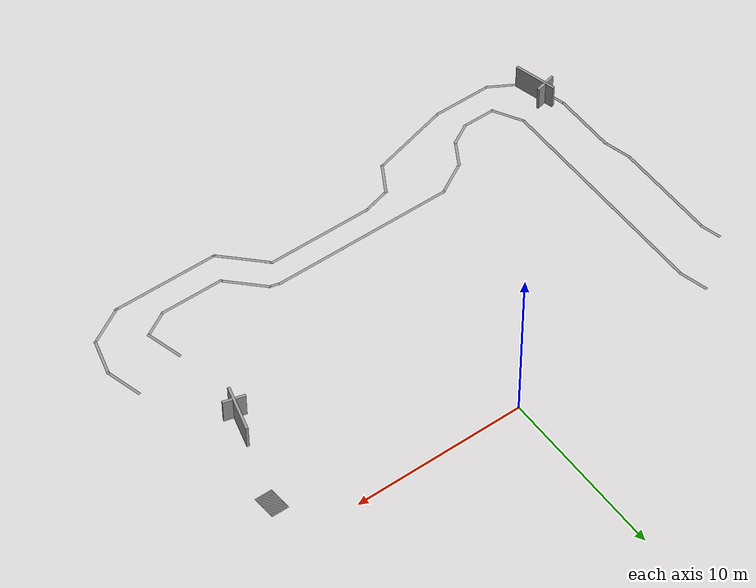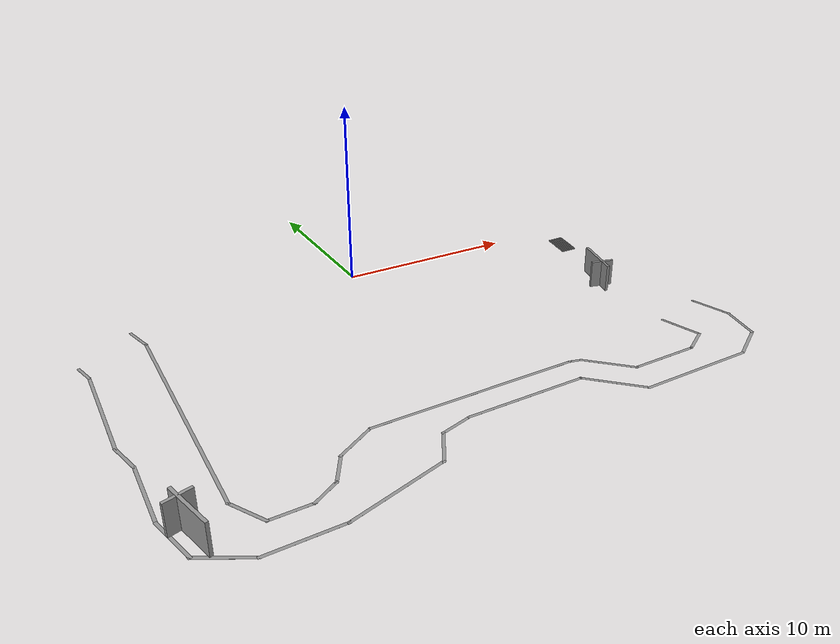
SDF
<sdf version="1.7">
 <model name="Course2023">
  <pose>-0.154528 0.080991 0 0 -0 0</pose>
  <link name="Stairs_11">
   <visual name="Stairs_11_Visual_0">
    <pose>13.5343 -3.32779 0.00375 0 0 -3.14159</pose>
    <geometry><box><size>1 0.05 0.0075</size></box></geometry>
    <material>
     <script><uri>file://media/materials/scripts/gazebo.material</uri><name>Gazebo/Grey</name></script>
     <ambient>1 1 1 1</ambient>
    </material>
    <meta><layer>0</layer></meta>
   </visual>
   <collision name="Stairs_11_Collision_0">
    <geometry><box><size>1 0.05 0.0075</size></box></geometry>
    <pose>13.5343 -3.32779 0.00375 0 0 -3.14159</pose>
   </collision>
   <visual name="Stairs_11_Visual_1">
    <pose>13.5343 -3.27779 0.01125 0 0 -3.14159</pose>
    <geometry><box><size>1 0.05 0.0075</size></box></geometry>
    <material>
     <script><uri>file://media/materials/scripts/gazebo.material</uri><name>Gazebo/Grey</name></script>
     <ambient>1 1 1 1</ambient>
    </material>
    <meta><layer>0</layer></meta>
   </visual>
   <collision name="Stairs_11_Collision_1">
    <geometry><box><size>1 0.05 0.0075</size></box></geometry>
    <pose>13.5343 -3.27779 0.01125 0 0 -3.14159</pose>
   </collision>
   <visual name="Stairs_11_Visual_2">
    <pose>13.5343 -3.22779 0.01875 0 0 -3.14159</pose>
    <geometry><box><size>1 0.05 0.0075</size></box></geometry>
    <material>
     <script><uri>file://media/materials/scripts/gazebo.material</uri><name>Gazebo/Grey</name></script>
     <ambient>1 1 1 1</ambient>
    </material>
    <meta><layer>0</layer></meta>
   </visual>
   <collision name="Stairs_11_Collision_2">
    <geometry><box><size>1 0.05 0.0075</size></box></geometry>
    <pose>13.5343 -3.22779 0.01875 0 0 -3.14159</pose>
   </collision>
   <visual name="Stairs_11_Visual_3">
    <pose>13.5343 -3.17779 0.02625 0 0 -3.14159</pose>
    <geometry><box><size>1 0.05 0.0075</size></box></geometry>
    <material>
     <script><uri>file://media/materials/scripts/gazebo.material</uri><name>Gazebo/Grey</name></script>
     <ambient>1 1 1 1</ambient>
    </material>
    <meta><layer>0</layer></meta>
   </visual>
   <collision name="Stairs_11_Collision_3">
    <geometry><box><size>1 0.05 0.0075</size></box></geometry>
    <pose>13.5343 -3.17779 0.02625 0 0 -3.14159</pose>
   </collision>
   <visual name="Stairs_11_Visual_4">
    <pose>13.5343 -3.12779 0.03375 0 0 -3.14159</pose>
    <geometry><box><size>1 0.05 0.0075</size></box></geometry>
    <material>
     <script><uri>file://media/materials/scripts/gazebo.material</uri><name>Gazebo/Grey</name></script>
     <ambient>1 1 1 1</ambient>
    </material>
    <meta><layer>0</layer></meta>
   </visual>
   <collision name="Stairs_11_Collision_4">
    <geometry><box><size>1 0.05 0.0075</size></box></geometry>
    <pose>13.5343 -3.12779 0.03375 0 0 -3.14159</pose>
   </collision>
   <visual name="Stairs_11_Visual_5">
    <pose>13.5343 -3.07779 0.04125 0 0 -3.14159</pose>
    <geometry><box><size>1 0.05 0.0075</size></box></geometry>
    <material>
     <script><uri>file://media/materials/scripts/gazebo.material</uri><name>Gazebo/Grey</name></script>
     <ambient>1 1 1 1</ambient>
    </material>
    <meta><layer>0</layer></meta>
   </visual>
   <collision name="Stairs_11_Collision_5">
    <geometry><box><size>1 0.05 0.0075</size></box></geometry>
    <pose>13.5343 -3.07779 0.04125 0 0 -3.14159</pose>
   </collision>
   <visual name="Stairs_11_Visual_6">
    <pose>13.5343 -3.02779 0.04875 0 0 -3.14159</pose>
    <geometry><box><size>1 0.05 0.0075</size></box></geometry>
    <material>
     <script><uri>file://media/materials/scripts/gazebo.material</uri><name>Gazebo/Grey</name></script>
     <ambient>1 1 1 1</ambient>
    </material>
    <meta><layer>0</layer></meta>
   </visual>
   <collision name="Stairs_11_Collision_6">
    <geometry><box><size>1 0.05 0.0075</size></box></geometry>
    <pose>13.5343 -3.02779 0.04875 0 0 -3.14159</pose>
   </collision>
   <visual name="Stairs_11_Visual_7">
    <pose>13.5343 -2.97779 0.05625 0 0 -3.14159</pose>
    <geometry><box><size>1 0.05 0.0075</size></box></geometry>
    <material>
     <script><uri>file://media/materials/scripts/gazebo.material</uri><name>Gazebo/Grey</name></script>
     <ambient>1 1 1 1</ambient>
    </material>
    <meta><layer>0</layer></meta>
   </visual>
   <collision name="Stairs_11_Collision_7">
    <geometry><box><size>1 0.05 0.0075</size></box></geometry>
    <pose>13.5343 -2.97779 0.05625 0 0 -3.14159</pose>
   </collision>
   <visual name="Stairs_11_Visual_8">
    <pose>13.5343 -2.92779 0.06375 0 0 -3.14159</pose>
    <geometry><box><size>1 0.05 0.0075</size></box></geometry>
    <material>
     <script><uri>file://media/materials/scripts/gazebo.material</uri><name>Gazebo/Grey</name></script>
     <ambient>1 1 1 1</ambient>
    </material>
    <meta><layer>0</layer></meta>
   </visual>
   <collision name="Stairs_11_Collision_8">
    <geometry><box><size>1 0.05 0.0075</size></box></geometry>
    <pose>13.5343 -2.92779 0.06375 0 0 -3.14159</pose>
   </collision>
   <visual name="Stairs_11_Visual_9">
    <pose>13.5343 -2.87779 0.07125 0 0 -3.14159</pose>
    <geometry><box><size>1 0.05 0.0075</size></box></geometry>
    <material>
     <script><uri>file://media/materials/scripts/gazebo.material</uri><name>Gazebo/Grey</name></script>
     <ambient>1 1 1 1</ambient>
    </material>
    <meta><layer>0</layer></meta>
   </visual>
   <collision name="Stairs_11_Collision_9">
    <geometry><box><size>1 0.05 0.0075</size></box></geometry>
    <pose>13.5343 -2.87779 0.07125 0 0 -3.14159</pose>
   </collision>
   <visual name="Stairs_11_Visual_10">
    <pose>13.5343 -2.82779 0.07875 0 0 -3.14159</pose>
    <geometry><box><size>1 0.05 0.0075</size></box></geometry>
    <material>
     <script><uri>file://media/materials/scripts/gazebo.material</uri><name>Gazebo/Grey</name></script>
     <ambient>1 1 1 1</ambient>
    </material>
    <meta><layer>0</layer></meta>
   </visual>
   <collision name="Stairs_11_Collision_10">
    <geometry><box><size>1 0.05 0.0075</size></box></geometry>
    <pose>13.5343 -2.82779 0.07875 0 0 -3.14159</pose>
   </collision>
   <visual name="Stairs_11_Visual_11">
    <pose>13.5343 -2.77779 0.08625 0 0 -3.14159</pose>
    <geometry><box><size>1 0.05 0.0075</size></box></geometry>
    <material>
     <script><uri>file://media/materials/scripts/gazebo.material</uri><name>Gazebo/Grey</name></script>
     <ambient>1 1 1 1</ambient>
    </material>
    <meta><layer>0</layer></meta>
   </visual>
   <collision name="Stairs_11_Collision_11">
    <geometry><box><size>1 0.05 0.0075</size></box></geometry>
    <pose>13.5343 -2.77779 0.08625 0 0 -3.14159</pose>
   </collision>
   <visual name="Stairs_11_Visual_12">
    <pose>13.5343 -2.72779 0.09375 0 0 -3.14159</pose>
    <geometry><box><size>1 0.05 0.0075</size></box></geometry>
    <material>
     <script><uri>file://media/materials/scripts/gazebo.material</uri><name>Gazebo/Grey</name></script>
     <ambient>1 1 1 1</ambient>
    </material>
    <meta><layer>0</layer></meta>
   </visual>
   <collision name="Stairs_11_Collision_12">
    <geometry><box><size>1 0.05 0.0075</size></box></geometry>
    <pose>13.5343 -2.72779 0.09375 0 0 -3.14159</pose>
   </collision>
   <visual name="Stairs_11_Visual_13">
    <pose>13.5343 -2.67779 0.10125 0 0 -3.14159</pose>
    <geometry><box><size>1 0.05 0.0075</size></box></geometry>
    <material>
     <script><uri>file://media/materials/scripts/gazebo.material</uri><name>Gazebo/Grey</name></script>
     <ambient>1 1 1 1</ambient>
    </material>
    <meta><layer>0</layer></meta>
   </visual>
   <collision name="Stairs_11_Collision_13">
    <geometry><box><size>1 0.05 0.0075</size></box></geometry>
    <pose>13.5343 -2.67779 0.10125 0 0 -3.14159</pose>
   </collision>
   <visual name="Stairs_11_Visual_14">
    <pose>13.5343 -2.62779 0.10875 0 0 -3.14159</pose>
    <geometry><box><size>1 0.05 0.0075</size></box></geometry>
    <material>
     <script><uri>file://media/materials/scripts/gazebo.material</uri><name>Gazebo/Grey</name></script>
     <ambient>1 1 1 1</ambient>
    </material>
    <meta><layer>0</layer></meta>
   </visual>
   <collision name="Stairs_11_Collision_14">
    <geometry><box><size>1 0.05 0.0075</size></box></geometry>
    <pose>13.5343 -2.62779 0.10875 0 0 -3.14159</pose>
   </collision>
   <visual name="Stairs_11_Visual_15">
    <pose>13.5343 -2.57779 0.11625 0 0 -3.14159</pose>
    <geometry><box><size>1 0.05 0.0075</size></box></geometry>
    <material>
     <script><uri>file://media/materials/scripts/gazebo.material</uri><name>Gazebo/Grey</name></script>
     <ambient>1 1 1 1</ambient>
    </material>
    <meta><layer>0</layer></meta>
   </visual>
   <collision name="Stairs_11_Collision_15">
    <geometry><box><size>1 0.05 0.0075</size></box></geometry>
    <pose>13.5343 -2.57779 0.11625 0 0 -3.14159</pose>
   </collision>
   <visual name="Stairs_11_Visual_16">
    <pose>13.5343 -2.52779 0.12375 0 0 -3.14159</pose>
    <geometry><box><size>1 0.05 0.0075</size></box></geometry>
    <material>
     <script><uri>file://media/materials/scripts/gazebo.material</uri><name>Gazebo/Grey</name></script>
     <ambient>1 1 1 1</ambient>
    </material>
    <meta><layer>0</layer></meta>
   </visual>
   <collision name="Stairs_11_Collision_16">
    <geometry><box><size>1 0.05 0.0075</size></box></geometry>
    <pose>13.5343 -2.52779 0.12375 0 0 -3.14159</pose>
   </collision>
   <visual name="Stairs_11_Visual_17">
    <pose>13.5343 -2.47779 0.13125 0 0 -3.14159</pose>
    <geometry><box><size>1 0.05 0.0075</size></box></geometry>
    <material>
     <script><uri>file://media/materials/scripts/gazebo.material</uri><name>Gazebo/Grey</name></script>
     <ambient>1 1 1 1</ambient>
    </material>
    <meta><layer>0</layer></meta>
   </visual>
   <collision name="Stairs_11_Collision_17">
    <geometry><box><size>1 0.05 0.0075</size></box></geometry>
    <pose>13.5343 -2.47779 0.13125 0 0 -3.14159</pose>
   </collision>
   <visual name="Stairs_11_Visual_18">
    <pose>13.5343 -2.42779 0.13875 0 0 -3.14159</pose>
    <geometry><box><size>1 0.05 0.0075</size></box></geometry>
    <material>
     <script><uri>file://media/materials/scripts/gazebo.material</uri><name>Gazebo/Grey</name></script>
     <ambient>1 1 1 1</ambient>
    </material>
    <meta><layer>0</layer></meta>
   </visual>
   <collision name="Stairs_11_Collision_18">
    <geometry><box><size>1 0.05 0.0075</size></box></geometry>
    <pose>13.5343 -2.42779 0.13875 0 0 -3.14159</pose>
   </collision>
   <visual name="Stairs_11_Visual_19">
    <pose>13.5343 -2.37779 0.14625 0 0 -3.14159</pose>
    <geometry><box><size>1 0.05 0.0075</size></box></geometry>
    <material>
     <script><uri>file://media/materials/scripts/gazebo.material</uri><name>Gazebo/Grey</name></script>
     <ambient>1 1 1 1</ambient>
    </material>
    <meta><layer>0</layer></meta>
   </visual>
   <collision name="Stairs_11_Collision_19">
    <geometry><box><size>1 0.05 0.0075</size></box></geometry>
    <pose>13.5343 -2.37779 0.14625 0 0 -3.14159</pose>
   </collision>
   <visual name="Stairs_11_Visual_20">
    <pose>13.5343 -2.32779 0.15375 0 0 -3.14159</pose>
    <geometry><box><size>1 0.05 0.0075</size></box></geometry>
    <material>
     <script><uri>file://media/materials/scripts/gazebo.material</uri><name>Gazebo/Grey</name></script>
     <ambient>1 1 1 1</ambient>
    </material>
    <meta><layer>0</layer></meta>
   </visual>
   <collision name="Stairs_11_Collision_20">
    <geometry><box><size>1 0.05 0.0075</size></box></geometry>
    <pose>13.5343 -2.32779 0.15375 0 0 -3.14159</pose>
   </collision>
   <visual name="Stairs_11_Visual_21">
    <pose>13.5343 -2.27779 0.16125 0 0 -3.14159</pose>
    <geometry><box><size>1 0.05 0.0075</size></box></geometry>
    <material>
     <script><uri>file://media/materials/scripts/gazebo.material</uri><name>Gazebo/Grey</name></script>
     <ambient>1 1 1 1</ambient>
    </material>
    <meta><layer>0</layer></meta>
   </visual>
   <collision name="Stairs_11_Collision_21">
    <geometry><box><size>1 0.05 0.0075</size></box></geometry>
    <pose>13.5343 -2.27779 0.16125 0 0 -3.14159</pose>
   </collision>
   <visual name="Stairs_11_Visual_22">
    <pose>13.5343 -2.22779 0.16875 0 0 -3.14159</pose>
    <geometry><box><size>1 0.05 0.0075</size></box></geometry>
    <material>
     <script><uri>file://media/materials/scripts/gazebo.material</uri><name>Gazebo/Grey</name></script>
     <ambient>1 1 1 1</ambient>
    </material>
    <meta><layer>0</layer></meta>
   </visual>
   <collision name="Stairs_11_Collision_22">
    <geometry><box><size>1 0.05 0.0075</size></box></geometry>
    <pose>13.5343 -2.22779 0.16875 0 0 -3.14159</pose>
   </collision>
   <visual name="Stairs_11_Visual_23">
    <pose>13.5343 -2.17779 0.17625 0 0 -3.14159</pose>
    <geometry><box><size>1 0.05 0.0075</size></box></geometry>
    <material>
     <script><uri>file://media/materials/scripts/gazebo.material</uri><name>Gazebo/Grey</name></script>
     <ambient>1 1 1 1</ambient>
    </material>
    <meta><layer>0</layer></meta>
   </visual>
   <collision name="Stairs_11_Collision_23">
    <geometry><box><size>1 0.05 0.0075</size></box></geometry>
    <pose>13.5343 -2.17779 0.17625 0 0 -3.14159</pose>
   </collision>
   <visual name="Stairs_11_Visual_24">
    <pose>13.5343 -2.12779 0.18375 0 0 -3.14159</pose>
    <geometry><box><size>1 0.05 0.0075</size></box></geometry>
    <material>
     <script><uri>file://media/materials/scripts/gazebo.material</uri><name>Gazebo/Grey</name></script>
     <ambient>1 1 1 1</ambient>
    </material>
    <meta><layer>0</layer></meta>
   </visual>
   <collision name="Stairs_11_Collision_24">
    <geometry><box><size>1 0.05 0.0075</size></box></geometry>
    <pose>13.5343 -2.12779 0.18375 0 0 -3.14159</pose>
   </collision>
   <visual name="Stairs_11_Visual_25">
    <pose>13.5343 -2.07779 0.19125 0 0 -3.14159</pose>
    <geometry><box><size>1 0.05 0.0075</size></box></geometry>
    <material>
     <script><uri>file://media/materials/scripts/gazebo.material</uri><name>Gazebo/Grey</name></script>
     <ambient>1 1 1 1</ambient>
    </material>
    <meta><layer>0</layer></meta>
   </visual>
   <collision name="Stairs_11_Collision_25">
    <geometry><box><size>1 0.05 0.0075</size></box></geometry>
    <pose>13.5343 -2.07779 0.19125 0 0 -3.14159</pose>
   </collision>
   <visual name="Stairs_11_Visual_26">
    <pose>13.5343 -2.02779 0.19875 0 0 -3.14159</pose>
    <geometry><box><size>1 0.05 0.0075</size></box></geometry>
    <material>
     <script><uri>file://media/materials/scripts/gazebo.material</uri><name>Gazebo/Grey</name></script>
     <ambient>1 1 1 1</ambient>
    </material>
    <meta><layer>0</layer></meta>
   </visual>
   <collision name="Stairs_11_Collision_26">
    <geometry><box><size>1 0.05 0.0075</size></box></geometry>
    <pose>13.5343 -2.02779 0.19875 0 0 -3.14159</pose>
   </collision>
   <visual name="Stairs_11_Visual_27">
    <pose>13.5343 -1.97779 0.20625 0 0 -3.14159</pose>
    <geometry><box><size>1 0.05 0.0075</size></box></geometry>
    <material>
     <script><uri>file://media/materials/scripts/gazebo.material</uri><name>Gazebo/Grey</name></script>
     <ambient>1 1 1 1</ambient>
    </material>
    <meta><layer>0</layer></meta>
   </visual>
   <collision name="Stairs_11_Collision_27">
    <geometry><box><size>1 0.05 0.0075</size></box></geometry>
    <pose>13.5343 -1.97779 0.20625 0 0 -3.14159</pose>
   </collision>
   <visual name="Stairs_11_Visual_28">
    <pose>13.5343 -1.92779 0.21375 0 0 -3.14159</pose>
    <geometry><box><size>1 0.05 0.0075</size></box></geometry>
    <material>
     <script><uri>file://media/materials/scripts/gazebo.material</uri><name>Gazebo/Grey</name></script>
     <ambient>1 1 1 1</ambient>
    </material>
    <meta><layer>0</layer></meta>
   </visual>
   <collision name="Stairs_11_Collision_28">
    <geometry><box><size>1 0.05 0.0075</size></box></geometry>
    <pose>13.5343 -1.92779 0.21375 0 0 -3.14159</pose>
   </collision>
   <visual name="Stairs_11_Visual_29">
    <pose>13.5343 -1.87779 0.22125 0 0 -3.14159</pose>
    <geometry><box><size>1 0.05 0.0075</size></box></geometry>
    <material>
     <script><uri>file://media/materials/scripts/gazebo.material</uri><name>Gazebo/Grey</name></script>
     <ambient>1 1 1 1</ambient>
    </material>
    <meta><layer>0</layer></meta>
   </visual>
   <collision name="Stairs_11_Collision_29">
    <geometry><box><size>1 0.05 0.0075</size></box></geometry>
    <pose>13.5343 -1.87779 0.22125 0 0 -3.14159</pose>
   </collision>
  </link>
  <link name="Wall_15">
   <collision name="Wall_15_Collision">
    <geometry><box><size>1.25 0.15 0.001</size></box></geometry>
    <pose>0 0 0.0005 0 -0 0</pose>
   </collision>
   <visual name="Wall_15_Visual">
    <pose>0 0 0.0005 0 -0 0</pose>
    <geometry><box><size>1.25 0.15 0.001</size></box></geometry>
    <material>
     <script><uri>file://media/materials/scripts/gazebo.material</uri><name>Gazebo/Grey</name></script>
     <ambient>1 1 1 1</ambient>
    </material>
    <meta><layer>0</layer></meta>
   </visual>
   <pose>-15.1 -3.29099 0 0 -0 -1.30861</pose>
  </link>
  <link name="Wall_16">
   <collision name="Wall_16_Collision">
    <geometry><box><size>6.25 0.15 0.001</size></box></geometry>
    <pose>0 0 0.0005 0 -0 0</pose>
   </collision>
   <visual name="Wall_16_Visual">
    <pose>0 0 0.0005 0 -0 0</pose>
    <geometry><box><size>6.25 0.15 0.001</size></box></geometry>
    <material>
     <script><uri>file://media/materials/scripts/gazebo.material</uri><name>Gazebo/Grey</name></script>
     <ambient>1 1 1 1</ambient>
    </material>
    <meta><layer>0</layer></meta>
   </visual>
   <pose>-14.9575 -6.87199 0 0 -0 -1.5708</pose>
  </link>
  <link name="Wall_17">
   <collision name="Wall_17_Collision">
    <geometry><box><size>1.75 0.15 0.001</size></box></geometry>
    <pose>0 0 0.0005 0 -0 0</pose>
   </collision>
   <visual name="Wall_17_Visual">
    <pose>0 0 0.0005 0 -0 0</pose>
    <geometry><box><size>1.75 0.15 0.001</size></box></geometry>
    <material>
     <script><uri>file://media/materials/scripts/gazebo.material</uri><name>Gazebo/Grey</name></script>
     <ambient>1 1 1 1</ambient>
    </material>
    <meta><layer>0</layer></meta>
   </visual>
   <pose>-14.7505 -10.695 0 0 -0 -1.30915</pose>
  </link>
  <link name="Wall_18">
   <collision name="Wall_18_Collision">
    <geometry><box><size>3.75 0.15 0.001</size></box></geometry>
    <pose>0 0 0.0005 0 -0 0</pose>
   </collision>
   <visual name="Wall_18_Visual">
    <pose>0 0 0.0005 0 -0 0</pose>
    <geometry><box><size>3.75 0.15 0.001</size></box></geometry>
    <material>
     <script><uri>file://media/materials/scripts/gazebo.material</uri><name>Gazebo/Grey</name></script>
     <ambient>1 1 1 1</ambient>
    </material>
    <meta><layer>0</layer></meta>
   </visual>
   <pose>-14.5435 -13.268 0 0 -0 -1.5708</pose>
  </link>
  <link name="Wall_19">
   <collision name="Wall_19_Collision">
    <geometry><box><size>2.5 0.15 0.001</size></box></geometry>
    <pose>0 0 0.0005 0 -0 0</pose>
   </collision>
   <visual name="Wall_19_Visual">
    <pose>0 0 0.0005 0 -0 0</pose>
    <geometry><box><size>2.5 0.15 0.001</size></box></geometry>
    <material>
     <script><uri>file://media/materials/scripts/gazebo.material</uri><name>Gazebo/Grey</name></script>
     <ambient>1 1 1 1</ambient>
    </material>
    <meta><layer>0</layer></meta>
   </visual>
   <pose>-14.2395 -16.203 0 0 -0 -1.3091</pose>
  </link>
  <link name="Wall_20">
   <collision name="Wall_20_Collision">
    <geometry><box><size>2.5 0.15 0.001</size></box></geometry>
    <pose>0 0 0.0005 0 -0 0</pose>
   </collision>
   <visual name="Wall_20_Visual">
    <pose>0 0 0.0005 0 -0 0</pose>
    <geometry><box><size>2.5 0.15 0.001</size></box></geometry>
    <material>
     <script><uri>file://media/materials/scripts/gazebo.material</uri><name>Gazebo/Grey</name></script>
     <ambient>1 1 1 1</ambient>
    </material>
    <meta><layer>0</layer></meta>
   </visual>
   <pose>-12.9175 -17.9255 0 0 -0 -0.52342</pose>
  </link>
  <link name="Wall_21">
   <collision name="Wall_21_Collision">
    <geometry><box><size>3.5 0.15 0.001</size></box></geometry>
    <pose>0 0 0.0005 0 -0 0</pose>
   </collision>
   <visual name="Wall_21_Visual">
    <pose>0 0 0.0005 0 -0 0</pose>
    <geometry><box><size>3.5 0.15 0.001</size></box></geometry>
    <material>
     <script><uri>file://media/materials/scripts/gazebo.material</uri><name>Gazebo/Grey</name></script>
     <ambient>1 1 1 1</ambient>
    </material>
    <meta><layer>0</layer></meta>
   </visual>
   <pose>-10.2245 -18.513 0 0 -0 0</pose>
  </link>
  <link name="Wall_22">
   <collision name="Wall_22_Collision">
    <geometry><box><size>5 0.15 0.001</size></box></geometry>
    <pose>0 0 0.0005 0 -0 0</pose>
   </collision>
   <visual name="Wall_22_Visual">
    <pose>0 0 0.0005 0 -0 0</pose>
    <geometry><box><size>5 0.15 0.001</size></box></geometry>
    <material>
     <script><uri>file://media/materials/scripts/gazebo.material</uri><name>Gazebo/Grey</name></script>
     <ambient>1 1 1 1</ambient>
    </material>
    <meta><layer>0</layer></meta>
   </visual>
   <pose>-6.20747 -17.885 0 0 -0 0.261984</pose>
  </link>
  <link name="Wall_23">
   <collision name="Wall_23_Collision">
    <geometry><box><size>2 0.15 0.001</size></box></geometry>
    <pose>0 0 0.0005 0 -0 0</pose>
   </collision>
   <visual name="Wall_23_Visual">
    <pose>0 0 0.0005 0 -0 0</pose>
    <geometry><box><size>2 0.15 0.001</size></box></geometry>
    <material>
     <script><uri>file://media/materials/scripts/gazebo.material</uri><name>Gazebo/Grey</name></script>
     <ambient>1 1 1 1</ambient>
    </material>
    <meta><layer>0</layer></meta>
   </visual>
   <pose>-3.40297 -16.456 0 0 -0 1.04716</pose>
  </link>
  <link name="Wall_24">
   <collision name="Wall_24_Collision">
    <geometry><box><size>1.75 0.15 0.001</size></box></geometry>
    <pose>0 0 0.0005 0 -0 0</pose>
   </collision>
   <visual name="Wall_24_Visual">
    <pose>0 0 0.0005 0 -0 0</pose>
    <geometry><box><size>1.75 0.15 0.001</size></box></geometry>
    <material>
     <script><uri>file://media/materials/scripts/gazebo.material</uri><name>Gazebo/Grey</name></script>
     <ambient>1 1 1 1</ambient>
    </material>
    <meta><layer>0</layer></meta>
   </visual>
   <pose>-2.16747 -15.448 0 0 -0 0.261649</pose>
  </link>
  <link name="Wall_25">
   <collision name="Wall_25_Collision">
    <geometry><box><size>6.25 0.15 0.001</size></box></geometry>
    <pose>0 0 0.0005 0 -0 0</pose>
   </collision>
   <visual name="Wall_25_Visual">
    <pose>0 0 0.0005 0 -0 0</pose>
    <geometry><box><size>6.25 0.15 0.001</size></box></geometry>
    <material>
     <script><uri>file://media/materials/scripts/gazebo.material</uri><name>Gazebo/Grey</name></script>
     <ambient>1 1 1 1</ambient>
    </material>
    <meta><layer>0</layer></meta>
   </visual>
   <pose>1.65553 -15.241 0 0 -0 0</pose>
  </link>
  <link name="Wall_26">
   <collision name="Wall_26_Collision">
    <geometry><box><size>3.25 0.15 0.001</size></box></geometry>
    <pose>0 0 0.0005 0 -0 0</pose>
   </collision>
   <visual name="Wall_26_Visual">
    <pose>0 0 0.0005 0 -0 0</pose>
    <geometry><box><size>3.25 0.15 0.001</size></box></geometry>
    <material>
     <script><uri>file://media/materials/scripts/gazebo.material</uri><name>Gazebo/Grey</name></script>
     <ambient>1 1 1 1</ambient>
    </material>
    <meta><layer>0</layer></meta>
   </visual>
   <pose>5.80153 -16.337 0 0 -0 -0.785398</pose>
  </link>
  <link name="Wall_27">
   <collision name="Wall_27_Collision">
    <geometry><box><size>6.25 0.15 0.001</size></box></geometry>
    <pose>0 0 0.0005 0 -0 0</pose>
   </collision>
   <visual name="Wall_27_Visual">
    <pose>0 0 0.0005 0 -0 0</pose>
    <geometry><box><size>6.25 0.15 0.001</size></box></geometry>
    <material>
     <script><uri>file://media/materials/scripts/gazebo.material</uri><name>Gazebo/Grey</name></script>
     <ambient>1 1 1 1</ambient>
    </material>
    <meta><layer>0</layer></meta>
   </visual>
   <pose>9.94753 -17.433 0 0 -0 0</pose>
  </link>
  <link name="Wall_28">
   <collision name="Wall_28_Collision">
    <geometry><box><size>2.5 0.15 0.001</size></box></geometry>
    <pose>0 0 0.0005 0 -0 0</pose>
   </collision>
   <visual name="Wall_28_Visual">
    <pose>0 0 0.0005 0 -0 0</pose>
    <geometry><box><size>2.5 0.15 0.001</size></box></geometry>
    <material>
     <script><uri>file://media/materials/scripts/gazebo.material</uri><name>Gazebo/Grey</name></script>
     <ambient>1 1 1 1</ambient>
    </material>
    <meta><layer>0</layer></meta>
   </visual>
   <pose>14.015 -16.8455 0 0 -0 0.523633</pose>
  </link>
  <link name="Wall_29">
   <collision name="Wall_29_Collision">
    <geometry><box><size>2.25 0.15 0.001</size></box></geometry>
    <pose>0 0 0.0005 0 -0 0</pose>
   </collision>
   <visual name="Wall_29_Visual">
    <pose>0 0 0.0005 0 -0 0</pose>
    <geometry><box><size>2.25 0.15 0.001</size></box></geometry>
    <material>
     <script><uri>file://media/materials/scripts/gazebo.material</uri><name>Gazebo/Grey</name></script>
     <ambient>1 1 1 1</ambient>
    </material>
    <meta><layer>0</layer></meta>
   </visual>
   <pose>15.304 -15.244 0 0 -0 1.30918</pose>
  </link>
  <link name="Wall_30">
   <collision name="Wall_30_Collision">
    <geometry><box><size>2.25 0.15 0.001</size></box></geometry>
    <pose>0 0 0.0005 0 -0 0</pose>
   </collision>
   <visual name="Wall_30_Visual">
    <pose>0 0 0.0005 0 -0 0</pose>
    <geometry><box><size>2.25 0.15 0.001</size></box></geometry>
    <material>
     <script><uri>file://media/materials/scripts/gazebo.material</uri><name>Gazebo/Grey</name></script>
     <ambient>1 1 1 1</ambient>
    </material>
    <meta><layer>0</layer></meta>
   </visual>
   <pose>15.304 -13.2155 0 0 -0 1.83229</pose>
  </link>
  <link name="Wall_32">
   <collision name="Wall_32_Collision">
    <geometry><box><size>2.25 0.15 0.001</size></box></geometry>
    <pose>0 0 0.0005 0 -0 0</pose>
   </collision>
   <visual name="Wall_32_Visual">
    <pose>0 0 0.0005 0 -0 0</pose>
    <geometry><box><size>2.25 0.15 0.001</size></box></geometry>
    <material>
     <script><uri>file://media/materials/scripts/gazebo.material</uri><name>Gazebo/Grey</name></script>
     <ambient>1 1 1 1</ambient>
    </material>
    <meta><layer>0</layer></meta>
   </visual>
   <pose>12.3025 -14.018 0 0 -0 -1.30872</pose>
  </link>
  <link name="Wall_33">
   <collision name="Wall_33_Collision">
    <geometry><box><size>1.75 0.15 0.001</size></box></geometry>
    <pose>0 0 0.0005 0 -0 0</pose>
   </collision>
   <visual name="Wall_33_Visual">
    <pose>0 0 0.0005 0 -0 0</pose>
    <geometry><box><size>1.75 0.15 0.001</size></box></geometry>
    <material>
     <script><uri>file://media/materials/scripts/gazebo.material</uri><name>Gazebo/Grey</name></script>
     <ambient>1 1 1 1</ambient>
    </material>
    <meta><layer>0</layer></meta>
   </visual>
   <pose>11.8815 -15.432 0 0 -0 -2.61811</pose>
  </link>
  <link name="Wall_34">
   <collision name="Wall_34_Collision">
    <geometry><box><size>3.75 0.15 0.001</size></box></geometry>
    <pose>0 0 0.0005 0 -0 0</pose>
   </collision>
   <visual name="Wall_34_Visual">
    <pose>0 0 0.0005 0 -0 0</pose>
    <geometry><box><size>3.75 0.15 0.001</size></box></geometry>
    <material>
     <script><uri>file://media/materials/scripts/gazebo.material</uri><name>Gazebo/Grey</name></script>
     <ambient>1 1 1 1</ambient>
    </material>
    <meta><layer>0</layer></meta>
   </visual>
   <pose>9.38853 -15.832 0 0 -0 3.14159</pose>
  </link>
  <link name="Wall_35">
   <collision name="Wall_35_Collision">
    <geometry><box><size>2.75 0.15 0.001</size></box></geometry>
    <pose>0 0 0.0005 0 -0 0</pose>
   </collision>
   <visual name="Wall_35_Visual">
    <pose>0 0 0.0005 0 -0 0</pose>
    <geometry><box><size>2.75 0.15 0.001</size></box></geometry>
    <material>
     <script><uri>file://media/materials/scripts/gazebo.material</uri><name>Gazebo/Grey</name></script>
     <ambient>1 1 1 1</ambient>
    </material>
    <meta><layer>0</layer></meta>
   </visual>
   <pose>6.66953 -14.913 0 0 -0 2.35619</pose>
  </link>
  <link name="Wall_36">
   <collision name="Wall_36_Collision">
    <geometry><box><size>0.75 0.15 0.001</size></box></geometry>
    <pose>0 0 0.0005 0 -0 0</pose>
   </collision>
   <visual name="Wall_36_Visual">
    <pose>0 0 0.0005 0 -0 0</pose>
    <geometry><box><size>0.75 0.15 0.001</size></box></geometry>
    <material>
     <script><uri>file://media/materials/scripts/gazebo.material</uri><name>Gazebo/Grey</name></script>
     <ambient>1 1 1 1</ambient>
    </material>
    <meta><layer>0</layer></meta>
   </visual>
   <pose>5.46053 -13.9165 0 0 -0 2.88045</pose>
  </link>
  <link name="Wall_37">
   <collision name="Wall_37_Collision">
    <geometry><box><size>10.75 0.15 0.001</size></box></geometry>
    <pose>0 0 0.0005 0 -0 0</pose>
   </collision>
   <visual name="Wall_37_Visual">
    <pose>0 0 0.0005 0 -0 0</pose>
    <geometry><box><size>10.75 0.15 0.001</size></box></geometry>
    <material>
     <script><uri>file://media/materials/scripts/gazebo.material</uri><name>Gazebo/Grey</name></script>
     <ambient>1 1 1 1</ambient>
    </material>
    <meta><layer>0</layer></meta>
   </visual>
   <pose>-0.129472 -13.839 0 0 -0 3.14159</pose>
  </link>
  <link name="Wall_38">
   <collision name="Wall_38_Collision">
    <geometry><box><size>2.25 0.15 0.001</size></box></geometry>
    <pose>0 0 0.0005 0 -0 0</pose>
   </collision>
   <visual name="Wall_38_Visual">
    <pose>0 0 0.0005 0 -0 0</pose>
    <geometry><box><size>2.25 0.15 0.001</size></box></geometry>
    <material>
     <script><uri>file://media/materials/scripts/gazebo.material</uri><name>Gazebo/Grey</name></script>
     <ambient>1 1 1 1</ambient>
    </material>
    <meta><layer>0</layer></meta>
   </visual>
   <pose>-6.33847 -14.364 0 0 -0 -2.61784</pose>
  </link>
  <link name="Wall_39">
   <collision name="Wall_39_Collision">
    <geometry><box><size>1.75 0.15 0.001</size></box></geometry>
    <pose>0 0 0.0005 0 -0 0</pose>
   </collision>
   <visual name="Wall_39_Visual">
    <pose>0 0 0.0005 0 -0 0</pose>
    <geometry><box><size>1.75 0.15 0.001</size></box></geometry>
    <material>
     <script><uri>file://media/materials/scripts/gazebo.material</uri><name>Gazebo/Grey</name></script>
     <ambient>1 1 1 1</ambient>
    </material>
    <meta><layer>0</layer></meta>
   </visual>
   <pose>-7.64747 -15.5815 0 0 -0 -2.09459</pose>
  </link>
  <link name="Wall_40">
   <collision name="Wall_40_Collision">
    <geometry><box><size>1.5 0.15 0.001</size></box></geometry>
    <pose>0 0 0.0005 0 -0 0</pose>
   </collision>
   <visual name="Wall_40_Visual">
    <pose>0 0 0.0005 0 -0 0</pose>
    <geometry><box><size>1.5 0.15 0.001</size></box></geometry>
    <material>
     <script><uri>file://media/materials/scripts/gazebo.material</uri><name>Gazebo/Grey</name></script>
     <ambient>1 1 1 1</ambient>
    </material>
    <meta><layer>0</layer></meta>
   </visual>
   <pose>-8.63247 -16.6115 0 0 -0 -2.61831</pose>
  </link>
  <link name="Wall_41">
   <collision name="Wall_41_Collision">
    <geometry><box><size>2 0.15 0.001</size></box></geometry>
    <pose>0 0 0.0005 0 -0 0</pose>
   </collision>
   <visual name="Wall_41_Visual">
    <pose>0 0 0.0005 0 -0 0</pose>
    <geometry><box><size>2 0.15 0.001</size></box></geometry>
    <material>
     <script><uri>file://media/materials/scripts/gazebo.material</uri><name>Gazebo/Grey</name></script>
     <ambient>1 1 1 1</ambient>
    </material>
    <meta><layer>0</layer></meta>
   </visual>
   <pose>-10.1425 -16.949 0 0 -0 3.14159</pose>
  </link>
  <link name="Wall_42">
   <collision name="Wall_42_Collision">
    <geometry><box><size>2 0.15 0.001</size></box></geometry>
    <pose>0 0 0.0005 0 -0 0</pose>
   </collision>
   <visual name="Wall_42_Visual">
    <pose>0 0 0.0005 0 -0 0</pose>
    <geometry><box><size>2 0.15 0.001</size></box></geometry>
    <material>
     <script><uri>file://media/materials/scripts/gazebo.material</uri><name>Gazebo/Grey</name></script>
     <ambient>1 1 1 1</ambient>
    </material>
    <meta><layer>0</layer></meta>
   </visual>
   <pose>-11.53 -16.148 0 0 -0 2.09443</pose>
  </link>
  <link name="Wall_43">
   <collision name="Wall_43_Collision">
    <geometry><box><size>13.5 0.15 0.001</size></box></geometry>
    <pose>0 0 0.0005 0 -0 0</pose>
   </collision>
   <visual name="Wall_43_Visual">
    <pose>0 0 0.0005 0 -0 0</pose>
    <geometry><box><size>13.5 0.15 0.001</size></box></geometry>
    <material>
     <script><uri>file://media/materials/scripts/gazebo.material</uri><name>Gazebo/Grey</name></script>
     <ambient>1 1 1 1</ambient>
    </material>
    <meta><layer>0</layer></meta>
   </visual>
   <pose>-11.9925 -8.67199 0 0 -0 1.5708</pose>
  </link>
  <link name="Wall_44">
   <collision name="Wall_44_Collision">
    <geometry><box><size>1.75 0.15 0.001</size></box></geometry>
    <pose>0 0 0.0005 0 -0 0</pose>
   </collision>
   <visual name="Wall_44_Visual">
    <pose>0 0 0.0005 0 -0 0</pose>
    <geometry><box><size>1.75 0.15 0.001</size></box></geometry>
    <material>
     <script><uri>file://media/materials/scripts/gazebo.material</uri><name>Gazebo/Grey</name></script>
     <ambient>1 1 1 1</ambient>
    </material>
    <meta><layer>0</layer></meta>
   </visual>
   <pose>-12.1995 -1.22449 0 0 -0 1.83261</pose>
  </link>
  <link name="Wall_78">
   <collision name="Wall_78_Collision">
    <geometry><box><size>2.75 0.15 1.5</size></box></geometry>
    <pose>0 0 0.75 0 -0 0</pose>
   </collision>
   <visual name="Wall_78_Visual">
    <pose>0 0 0.75 0 -0 0</pose>
    <geometry><box><size>2.75 0.15 1.5</size></box></geometry>
    <material>
     <script><uri>file://media/materials/scripts/gazebo.material</uri><name>Gazebo/Grey</name></script>
     <ambient>1 1 1 1</ambient>
    </material>
    <meta><layer>0</layer></meta>
   </visual>
   <pose>12.1145 -7.52549 0 0 -0 -1.83229</pose>
  </link>
  <link name="Wall_80">
   <collision name="Wall_80_Collision">
    <geometry><box><size>1.25 0.15 1.5</size></box></geometry>
    <pose>0 0 0.75 0 -0 0</pose>
   </collision>
   <visual name="Wall_80_Visual">
    <pose>0 0 0.75 0 -0 0</pose>
    <geometry><box><size>1.25 0.15 1.5</size></box></geometry>
    <material>
     <script><uri>file://media/materials/scripts/gazebo.material</uri><name>Gazebo/Grey</name></script>
     <ambient>1 1 1 1</ambient>
    </material>
    <meta><layer>0</layer></meta>
   </visual>
   <pose>11.945 -8.11449 0 0 -0 -0.261949</pose>
  </link>
  <link name="Wall_82">
   <collision name="Wall_82_Collision">
    <geometry><box><size>2.5 0.15 1.5</size></box></geometry>
    <pose>0 0 0.75 0 -0 0</pose>
   </collision>
   <visual name="Wall_82_Visual">
    <pose>0 0 0.75 0 -0 0</pose>
    <geometry><box><size>2.5 0.15 1.5</size></box></geometry>
    <material>
     <script><uri>file://media/materials/scripts/gazebo.material</uri><name>Gazebo/Grey</name></script>
     <ambient>1 1 1 1</ambient>
    </material>
    <meta><layer>0</layer></meta>
   </visual>
   <pose>-13.5995 -16.458 0 0 -0 1.83249</pose>
  </link>
  <link name="Wall_84">
   <collision name="Wall_84_Collision">
    <geometry><box><size>1.25 0.15 1.5</size></box></geometry>
    <pose>0 0 0.75 0 -0 0</pose>
   </collision>
   <visual name="Wall_84_Visual">
    <pose>0 0 0.75 0 -0 0</pose>
    <geometry><box><size>1.25 0.15 1.5</size></box></geometry>
    <material>
     <script><uri>file://media/materials/scripts/gazebo.material</uri><name>Gazebo/Grey</name></script>
     <ambient>1 1 1 1</ambient>
    </material>
    <meta><layer>0</layer></meta>
   </visual>
   <pose>-13.775 -15.8015 0 0 -0 0.261949</pose>
  </link>
  <static>1</static>
 </model>
</sdf>
